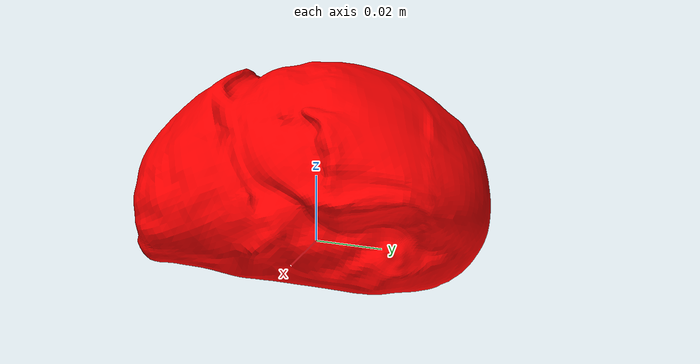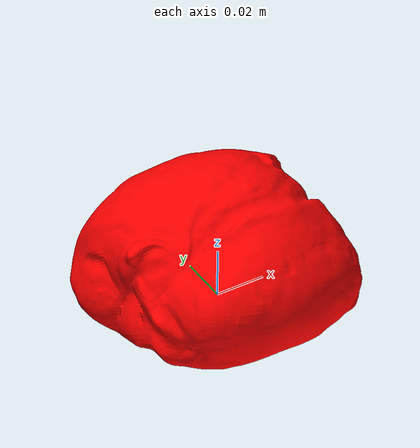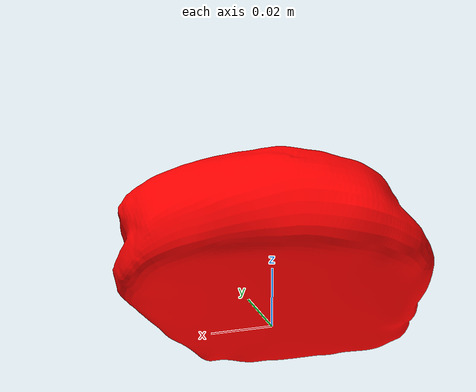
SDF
<?xml version="1.0" ?>
<sdf version="1.5">
  <model name="food_bread">

    <static>false</static>

    <link name="link">

      <inertial>
        <mass> 0.1 </mass>
        <pose> -3.5444000000e-04  2.2295190000e-02 -3.6098000000e-04 0 0 0 </pose>
        <inertia>
          <ixx>  7.2252732516e-05 </ixx>
          <ixy> -1.1803620772e-06 </ixy>
          <ixz> -1.9325442451e-06 </ixz>
          <iyy>  1.0398456739e-04 </iyy>
          <iyz> -6.9664432629e-07 </iyz>
          <izz>  6.1494163913e-05 </izz>
        </inertia>
      </inertial>

      <collision name="collision">
        <geometry>
          <mesh>
            <uri>model://food_bread/meshes/textured.dae</uri>
          </mesh>
        </geometry>
        <surface>
          <friction>
            <ode>
              <mu>50.0</mu>
              <mu2>50.0</mu2>
            </ode>
          </friction>
          <contact>
          	<ode>
          		<min_depth>0.001</min_depth>
          		<max_vel>0.0</max_vel>
          	</ode>
          </contact>
        </surface>
      </collision>

      <visual name="visual">
        <geometry>
          <mesh>
            <uri>model://food_bread/meshes/textured.dae</uri>
          </mesh>
        </geometry>
        <material>
          <ambient>1 0 0</ambient>
          <diffuse>1 0 0</diffuse>
          <specular>1 0 0</specular>
        </material>
      </visual>

    </link>
  </model>
</sdf>
